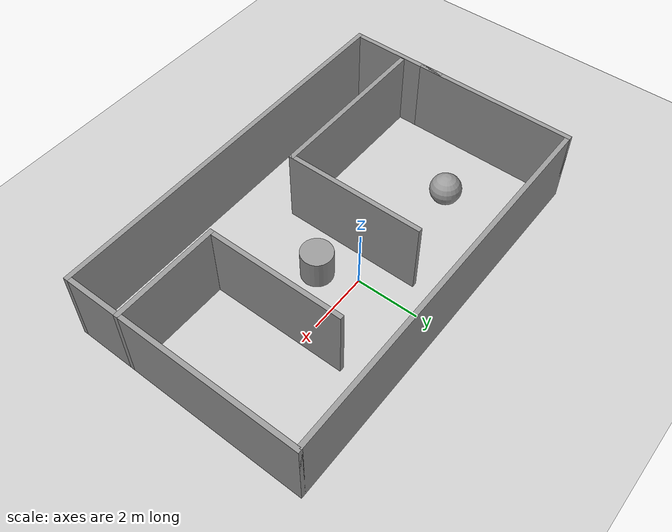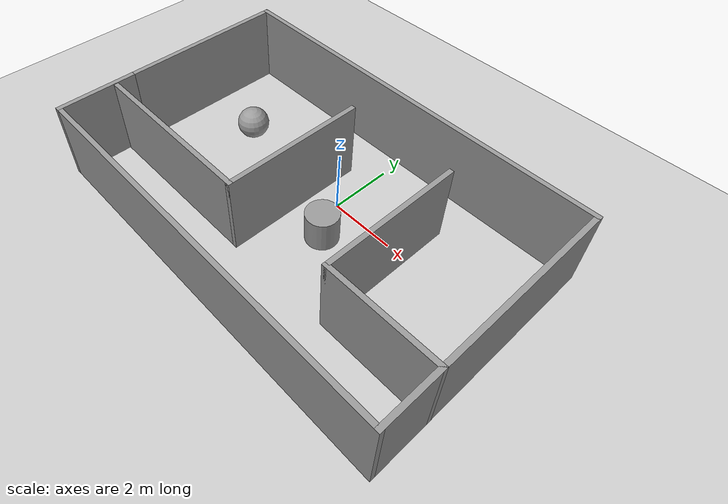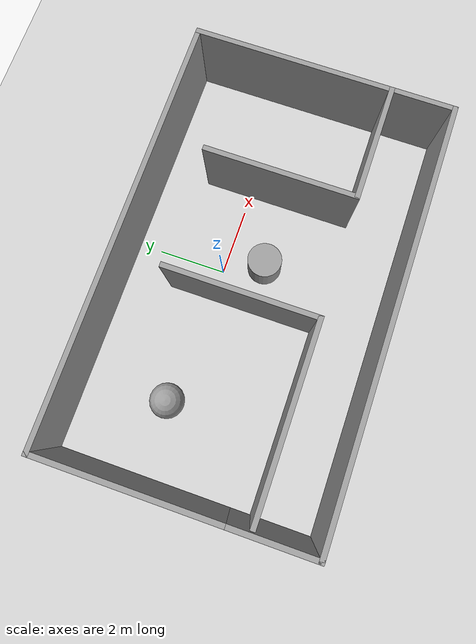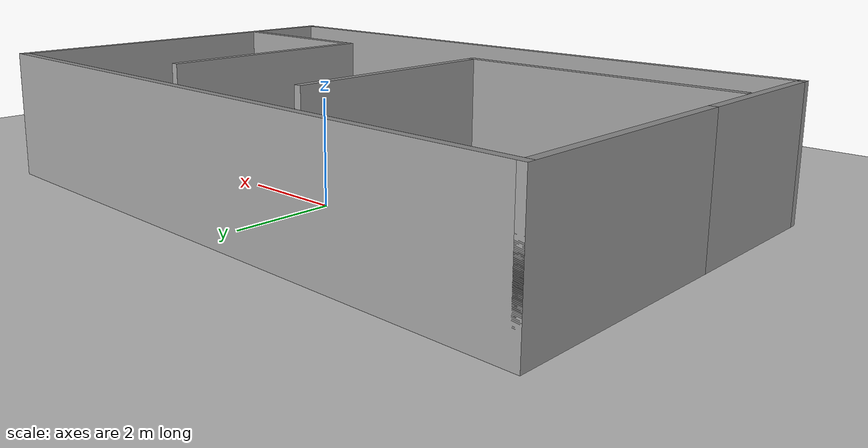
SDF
<sdf version="1.7">
 <world name="default">
  <light name="sun" type="directional">
   <pose>0 0 10 0 -0 0</pose>
   <diffuse>0.8 0.8 0.8 1</diffuse>
   <specular>0.2 0.2 0.2 1</specular>
   <attenuation>
    <range>1000</range>
    <constant>0.9</constant>
    <linear>0.01</linear>
    <quadratic>0.001</quadratic>
   </attenuation>
   <direction>-0.5 0.1 -0.9</direction>
   <spot><inner_angle>0</inner_angle><outer_angle>0</outer_angle><falloff>0</falloff></spot>
  </light>
  <model name="ground_plane">
   <static>1</static>
   <link name="link">
    <collision name="collision">
     <geometry><plane><normal>0 0 1</normal><size>100 100</size></plane></geometry>
     <surface>
      <contact><collide_bitmask>65535</collide_bitmask></contact>
      <friction><ode><mu>100</mu><mu2>50</mu2></ode></friction>
     </surface>
    </collision>
    <visual name="visual">
     <cast_shadows>0</cast_shadows>
     <geometry><plane><normal>0 0 1</normal><size>100 100</size></plane></geometry>
     <material>
      <script><uri>file://media/materials/scripts/gazebo.material</uri><name>Gazebo/Grey</name></script>
     </material>
    </visual>
   </link>
  </model>
  <gravity>0 0 -9.8</gravity>
  <magnetic_field>6e-06 2.3e-05 -4.2e-05</magnetic_field>
  <atmosphere type="adiabatic"/>
  <physics type="ode">
   <max_step_size>0.001</max_step_size>
   <real_time_factor>1</real_time_factor>
   <real_time_update_rate>1000</real_time_update_rate>
  </physics>
  <scene><ambient>0.4 0.4 0.4 1</ambient><background>0.7 0.7 0.7 1</background><shadows>1</shadows></scene>
  <audio><device>default</device></audio>
  <spherical_coordinates>
   <surface_model>EARTH_WGS84</surface_model>
   <latitude_deg>0</latitude_deg>
   <longitude_deg>0</longitude_deg>
   <elevation>0</elevation>
   <heading_deg>0</heading_deg>
  </spherical_coordinates>
  <model name="room">
   <pose>-0.201864 0.558217 0 0 -0 0</pose>
   <link name="Wall_0">
    <collision name="Wall_0_Collision">
     <geometry><box><size>5.25 0.15 2.5</size></box></geometry>
     <pose>0 0 1.25 0 -0 0</pose>
    </collision>
    <visual name="Wall_0_Visual">
     <pose>0 0 1.25 0 -0 0</pose>
     <geometry><box><size>5.25 0.15 2.5</size></box></geometry>
     <material>
      <script><uri>file://media/materials/scripts/gazebo.material</uri><name>Gazebo/Grey</name></script>
      <ambient>1 1 1 1</ambient>
     </material>
     <meta><layer>0</layer></meta>
    </visual>
    <pose>-6.175 -0.3625 0 0 -0 1.5708</pose>
   </link>
   <link name="Wall_1">
    <collision name="Wall_1_Collision">
     <geometry><box><size>12.5 0.15 2.5</size></box></geometry>
     <pose>0 0 1.25 0 -0 0</pose>
    </collision>
    <visual name="Wall_1_Visual">
     <pose>0 0 1.25 0 -0 0</pose>
     <geometry><box><size>12.5 0.15 2.5</size></box></geometry>
     <material>
      <script><uri>file://media/materials/scripts/gazebo.material</uri><name>Gazebo/Grey</name></script>
      <ambient>1 1 1 1</ambient>
     </material>
     <meta><layer>0</layer></meta>
    </visual>
    <pose>-0 2.1875 0 0 -0 0</pose>
   </link>
   <link name="Wall_10">
    <collision name="Wall_10_Collision">
     <geometry><box><size>4.5 0.15 2.5</size></box></geometry>
     <pose>0 0 1.25 0 -0 0</pose>
    </collision>
    <visual name="Wall_10_Visual">
     <pose>0 0 1.25 0 -0 0</pose>
     <geometry><box><size>4.5 0.15 2.5</size></box></geometry>
     <material>
      <script><uri>file://media/materials/scripts/gazebo.material</uri><name>Gazebo/Grey</name></script>
      <ambient>1 1 1 1</ambient>
     </material>
     <meta><layer>0</layer></meta>
    </visual>
    <pose>2.825 -1.4075 0 0 -0 -1.5708</pose>
   </link>
   <link name="Wall_11">
    <collision name="Wall_11_Collision">
     <geometry><box><size>3.5 0.15 2.5</size></box></geometry>
     <pose>0 0 1.25 0 -0 0</pose>
    </collision>
    <visual name="Wall_11_Visual">
     <pose>0 0 1.25 0 -0 0</pose>
     <geometry><box><size>3.5 0.15 2.5</size></box></geometry>
     <material>
      <script><uri>file://media/materials/scripts/gazebo.material</uri><name>Gazebo/Grey</name></script>
      <ambient>1 1 1 1</ambient>
     </material>
     <meta><layer>0</layer></meta>
    </visual>
    <pose>4.5 -3.5825 0 0 -0 0</pose>
   </link>
   <link name="Wall_2">
    <collision name="Wall_2_Collision">
     <geometry><box><size>7.75 0.15 2.5</size></box></geometry>
     <pose>0 0 1.25 0 -0 0</pose>
    </collision>
    <visual name="Wall_2_Visual">
     <pose>0 0 1.25 0 -0 0</pose>
     <geometry><box><size>7.75 0.15 2.5</size></box></geometry>
     <material>
      <script><uri>file://media/materials/scripts/gazebo.material</uri><name>Gazebo/Grey</name></script>
      <ambient>1 1 1 1</ambient>
     </material>
     <meta><layer>0</layer></meta>
    </visual>
    <pose>6.175 -1.6125 0 0 -0 -1.5708</pose>
   </link>
   <link name="Wall_3">
    <collision name="Wall_3_Collision">
     <geometry><box><size>12.5 0.15 2.5</size></box></geometry>
     <pose>0 0 1.25 0 -0 0</pose>
    </collision>
    <visual name="Wall_3_Visual">
     <pose>0 0 1.25 0 -0 0</pose>
     <geometry><box><size>12.5 0.15 2.5</size></box></geometry>
     <material>
      <script><uri>file://media/materials/scripts/gazebo.material</uri><name>Gazebo/Grey</name></script>
      <ambient>1 1 1 1</ambient>
     </material>
     <meta><layer>0</layer></meta>
    </visual>
    <pose>-0 -5.4125 0 0 -0 3.14159</pose>
   </link>
   <link name="Wall_4">
    <collision name="Wall_4_Collision">
     <geometry><box><size>3.25 0.15 2.5</size></box></geometry>
     <pose>0 0 1.25 0 -0 0</pose>
    </collision>
    <visual name="Wall_4_Visual">
     <pose>0 0 1.25 0 -0 0</pose>
     <geometry><box><size>3.25 0.15 2.5</size></box></geometry>
     <material>
      <script><uri>file://media/materials/scripts/gazebo.material</uri><name>Gazebo/Grey</name></script>
      <ambient>1 1 1 1</ambient>
     </material>
     <meta><layer>0</layer></meta>
    </visual>
    <pose>-6.175 -3.8625 0 0 -0 1.5708</pose>
   </link>
   <link name="Wall_6">
    <collision name="Wall_6_Collision">
     <geometry><box><size>5.5 0.15 2.5</size></box></geometry>
     <pose>0 0 1.25 0 -0 0</pose>
    </collision>
    <visual name="Wall_6_Visual">
     <pose>0 0 1.25 0 -0 0</pose>
     <geometry><box><size>5.5 0.15 2.5</size></box></geometry>
     <material>
      <script><uri>file://media/materials/scripts/gazebo.material</uri><name>Gazebo/Grey</name></script>
      <ambient>1 1 1 1</ambient>
     </material>
     <meta><layer>0</layer></meta>
    </visual>
    <pose>-3.32 -3.6425 0 0 -0 0</pose>
   </link>
   <link name="Wall_7">
    <collision name="Wall_7_Collision">
     <geometry><box><size>4.5 0.15 2.5</size></box></geometry>
     <pose>0 0 1.25 0 -0 0</pose>
    </collision>
    <visual name="Wall_7_Visual">
     <pose>0 0 1.25 0 -0 0</pose>
     <geometry><box><size>4.5 0.15 2.5</size></box></geometry>
     <material>
      <script><uri>file://media/materials/scripts/gazebo.material</uri><name>Gazebo/Grey</name></script>
      <ambient>1 1 1 1</ambient>
     </material>
     <meta><layer>0</layer></meta>
    </visual>
    <pose>-0.645 -1.4675 0 0 -0 1.5708</pose>
   </link>
   <static>1</static>
  </model>
  <model name="unit_sphere">
   <pose>-4.11925 0.202432 0.5 0.030913 -2e-06 0</pose>
   <link name="link">
    <inertial>
     <mass>1</mass>
     <inertia><ixx>0.1</ixx><ixy>0</ixy><ixz>0</ixz><iyy>0.1</iyy><iyz>0</iyz><izz>0.1</izz></inertia>
    </inertial>
    <collision name="collision"><geometry><sphere><radius>0.5</radius></sphere></geometry></collision>
    <visual name="visual">
     <geometry><sphere><radius>0.5</radius></sphere></geometry>
     <material>
      <script><name>Gazebo/Grey</name><uri>file://media/materials/scripts/gazebo.material</uri></script>
     </material>
    </visual>
   </link>
  </model>
  <model name="unit_cylinder">
   <pose>0.524799 -1.12489 0.499997 3e-06 3e-06 0</pose>
   <link name="link">
    <inertial>
     <mass>1</mass>
     <inertia><ixx>0.145833</ixx><ixy>0</ixy><ixz>0</ixz><iyy>0.145833</iyy><iyz>0</iyz><izz>0.125</izz></inertia>
    </inertial>
    <collision name="collision">
     <geometry><cylinder><radius>0.5</radius><length>1</length></cylinder></geometry>
    </collision>
    <visual name="visual">
     <geometry><cylinder><radius>0.5</radius><length>1</length></cylinder></geometry>
     <material>
      <script><name>Gazebo/Grey</name><uri>file://media/materials/scripts/gazebo.material</uri></script>
     </material>
    </visual>
   </link>
  </model>
 </world>
</sdf>
